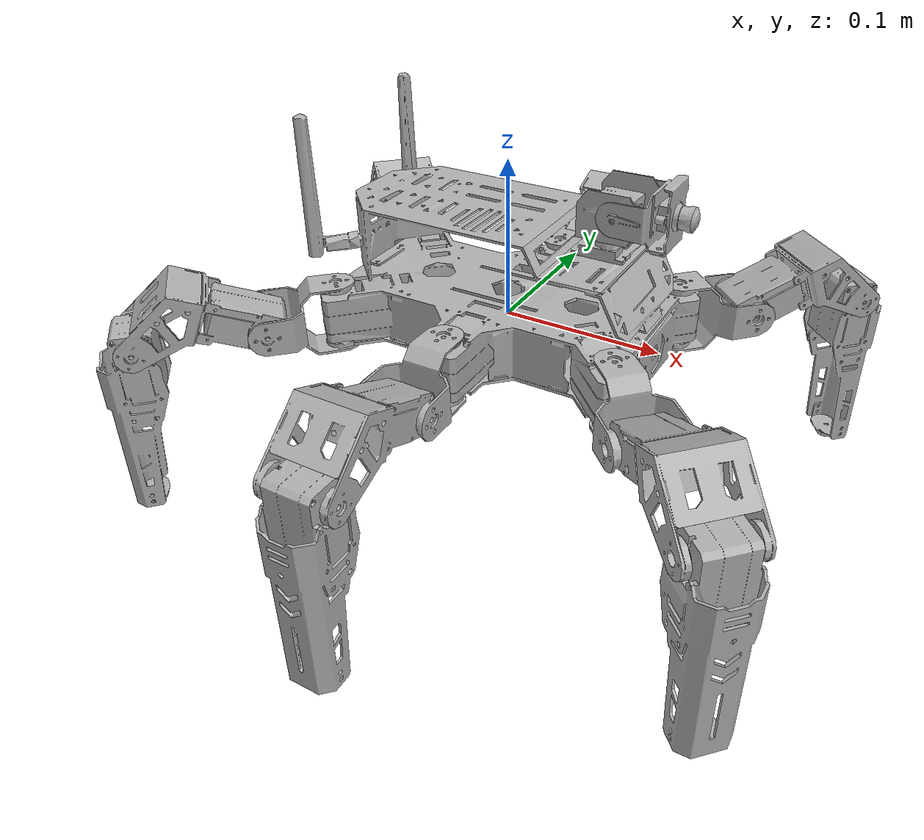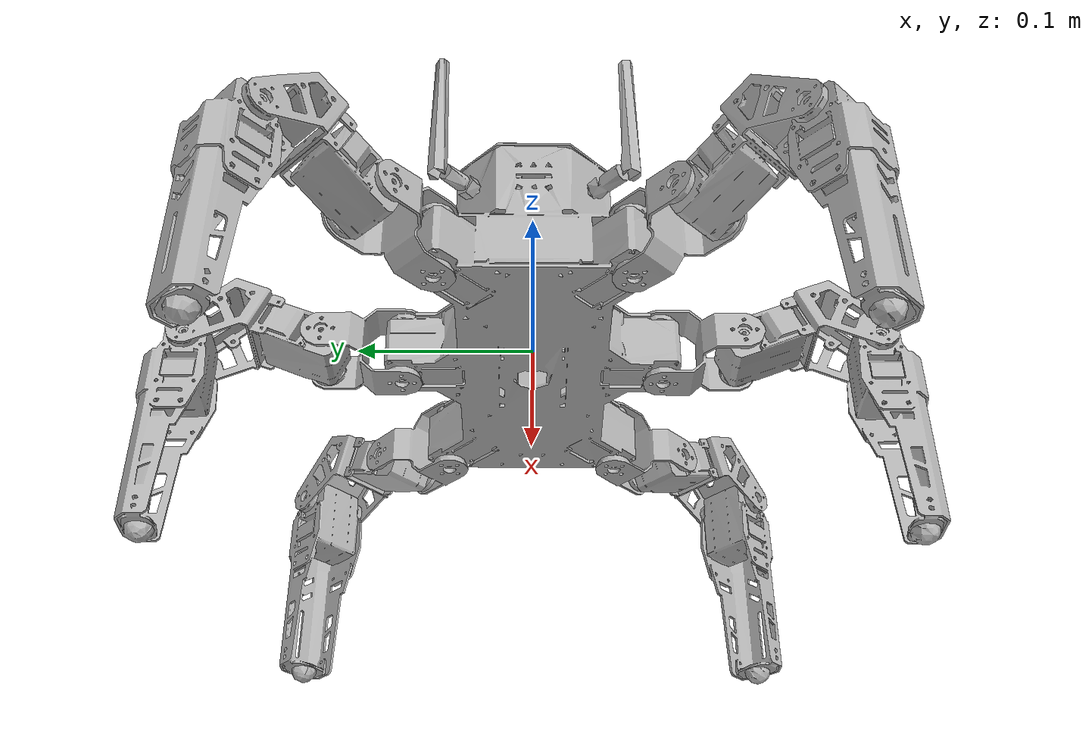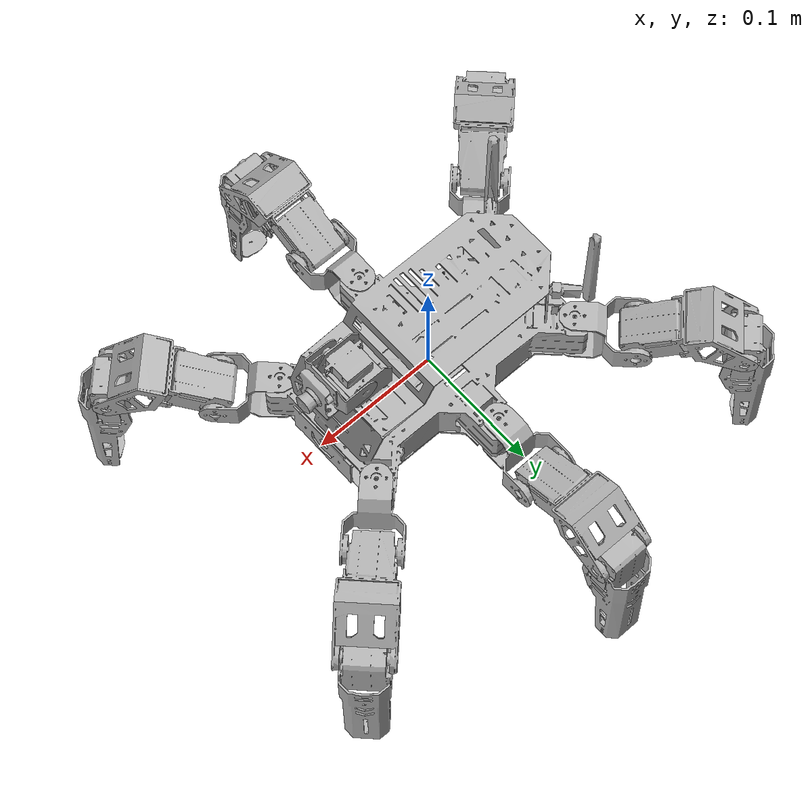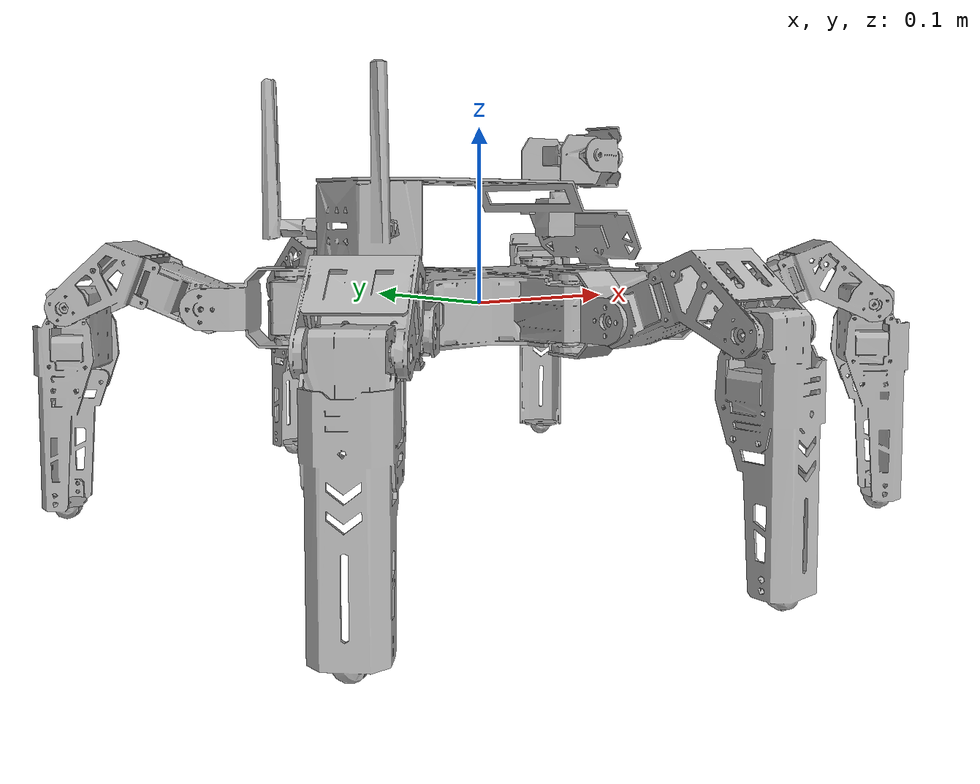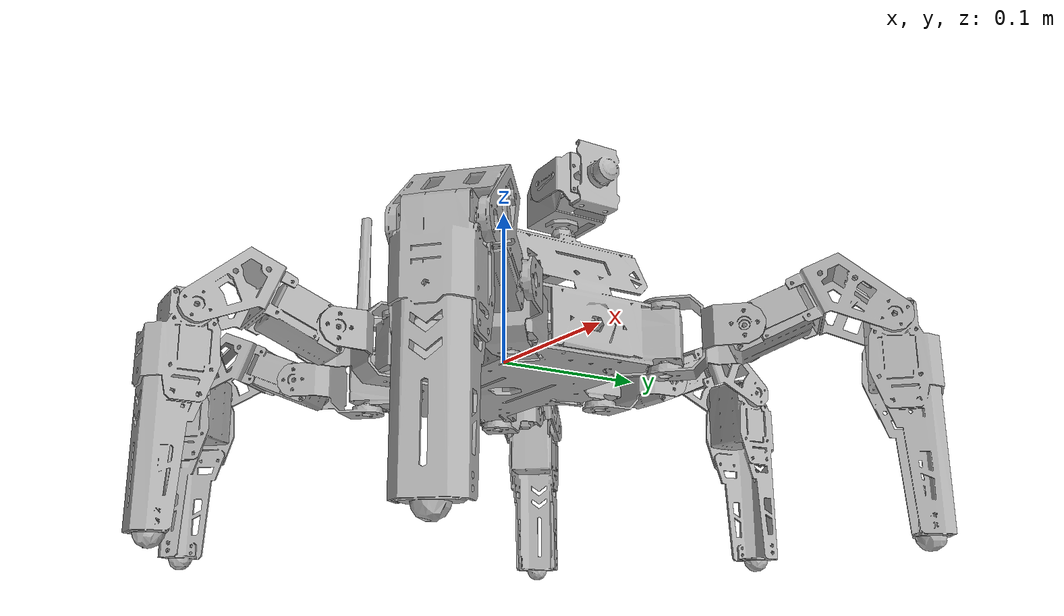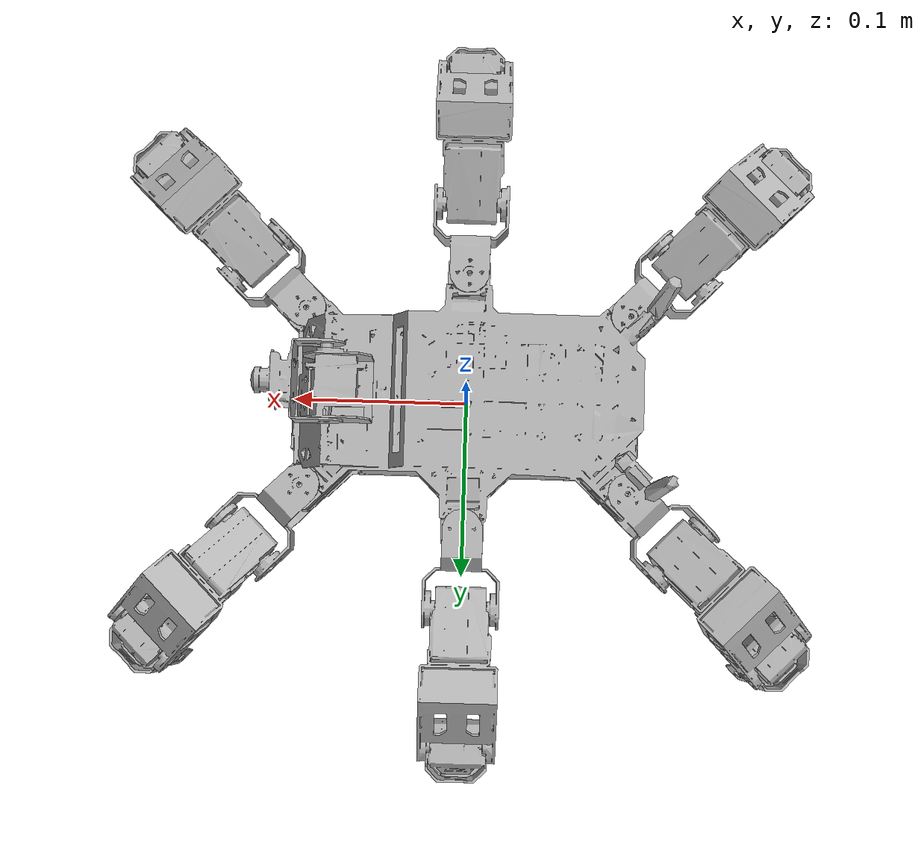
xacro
<?xml version="1.0" encoding="ASCII" ?>

<robot xmlns:xacro="http://www.ros.org/wiki/xacro">
    <!-- parameters -->
    <xacro:property name="my_pi" value="3.1415926535897931"/>
    <xacro:property name="body_length_x" value="0.3556"/>
    <xacro:property name="body_length_y" value="0.165"/>
    <xacro:property name="coxa_length" value="0.04505032"/>
    <xacro:property name="femur_length" value="0.07703"/>

    <!-- Joint properties -->
    <xacro:property name="joint_lower_limit" value="-${3.14}" />
    <xacro:property name="joint_upper_limit" value="${3.14}" />
    <xacro:property name="joint_effort" value="6.0" />
    <xacro:property name="joint_velocity" value="0.524" />

    <!-- Leg macro -->
    <xacro:macro name="leg" params="prefix side position x y angle axis">
        <!-- leg position -->
        <joint name="${prefix}leg_center_joint_${side}${position}" type="fixed">
            <origin xyz="${x} ${y} 0.0" rpy="0.0 0.0 0.0" />
            <parent link="${prefix}body_link" />
            <child link="${prefix}leg_center_${side}${position}" />
        </joint>
        <link name="${prefix}leg_center_${side}${position}">
            <inertial>
                <origin xyz="0.0 0.0 0.0" rpy="0.0 0.0 0.0" />
                <mass value="0.00001"/>
                <inertia ixx="1.0" ixy="0.0" ixz="0.0" iyy="1.0" iyz="0.0" izz="1.0" />
            </inertial>
        </link>
        <!-- coxa -->
        <joint name="${prefix}coxa_joint_${side}${position}" type="revolute">
            <origin xyz="0.0 0.0 0.0" rpy="0.0 0.0 ${angle}" />
            <parent link="${prefix}leg_center_${side}${position}" />
            <child link="${prefix}coxa_${side}${position}" />
            <axis xyz="0.0 0.0 1.0" />
            <limit lower="${joint_lower_limit}" upper="${joint_upper_limit}" effort="${joint_effort}" velocity="${joint_velocity}" />
	    <dynamics damping="0.7" />
        </joint>
        <link name="${prefix}coxa_${side}${position}">
            <visual>
                <origin xyz="0.0 0.0 0.0" rpy="0.0 0.0 0.0"/>
                <geometry>
			<mesh filename="meshes/jethexa_description/simplify/coxa.stl" scale="0.001 0.001 0.001"/>
                </geometry>
                <material name="">
                    <color rgba="0.7 0.7 0.7 1"/>
                </material>
            </visual>
            <collision>
                <origin xyz="0.0 0.0 0.0" rpy="0.0 0.0 0.0" />
                <geometry>
			<mesh filename="meshes/jethexa_description/simplify/coxa.stl" scale="0.001 0.001 0.001"/>
                </geometry>
                <material name="">
                    <color rgba="0.7 0.7 0.7 1" />
                </material>
            </collision>
            <inertial>
                <origin xyz="0.0 0.0 0.0" rpy="0.0 0.0 0.0" />
                <mass value="0.00001"/>
                <inertia ixx="1.0" ixy="0.0" ixz="0.0" iyy="1.0" iyz="0.0" izz="1.0" />
            </inertial>
        </link>
        <!-- femur -->
        <joint name="${prefix}femur_joint_${side}${position}" type="revolute">
            <origin xyz="${coxa_length} 0.0 0.0" rpy="${axis*my_pi/2} 0.0 0.0" />
            <parent link="${prefix}coxa_${side}${position}" />
            <child link="${prefix}femur_${side}${position}" />
            <axis xyz="0.0 0.0 ${axis}" />
            <limit lower="${joint_lower_limit}" upper="${joint_upper_limit}" effort="${joint_effort}" velocity="${joint_velocity}" />
	    <dynamics damping="0.7" />
        </joint>
        <link name="${prefix}femur_${side}${position}">
            <visual>
                <origin xyz="0.0 0.0 0.0" rpy="0.0 0.0 0.0"/>
                <geometry>
			<mesh filename="meshes/jethexa_description/simplify/${side}_femur.stl" scale="0.001 0.001 0.001"/>
                </geometry>
                <material name="">
                    <color rgba="0.7 0.7 0.7 1"/>
                </material>
            </visual>
            <collision>
                <origin xyz="0.0 0.0 0.0" rpy="0.0 0.0 0" />
                <geometry>
			<mesh filename="meshes/jethexa_description/simplify/${side}_femur.stl" scale="0.001 0.001 0.001"/>
                </geometry>
                <material name="">
                    <color rgba="0.7 0.7 0.7 1" />
                </material>
            </collision>
            <inertial>
                <origin xyz="0.0 0.0 0.0" rpy="0.0 0.0 1.0" />
                <mass value="0.00001"/>
                <inertia ixx="1.0" ixy="0.0" ixz="0.0" iyy="1.0" iyz="0.0" izz="1.0" />
            </inertial>
        </link>

        <!-- tibia -->
        <joint name="${prefix}tibia_joint_${side}${position}" type="revolute">
            <origin xyz="${femur_length} 0.0 0.0" rpy="0.0 0.0 ${-axis*my_pi/2}" />
            <parent link="${prefix}femur_${side}${position}" />
            <child link="${prefix}tibia_${side}${position}" />
            <axis xyz="0.0 0.0 ${axis}" />
            <limit lower="${joint_lower_limit}" upper="${joint_upper_limit}" effort="${joint_effort}" velocity="${joint_velocity}" />
	    <dynamics damping="0.7" />
        </joint>
        <link name="${prefix}tibia_${side}${position}">
            <visual>
                <origin xyz="0.0 0.0 0.0" rpy="0.0 0.0 0.0"/>
                <geometry>
			<mesh filename="meshes/jethexa_description/simplify/${side}_tibia.stl" scale="0.001 0.001 0.001"/>
                </geometry>
                <material name="">
                    <color rgba="0.7 0.7 0.7 1"/>
                </material>
            </visual>
            <collision>
                <origin xyz="0.0 0.0 0.0" rpy="0.0 0.0 0.0" />
                <geometry>
			<mesh filename="meshes/jethexa_description/simplify/${side}_tibia.stl" scale="0.001 0.001 0.001"/>
                </geometry>
                <material name="">
                    <color rgba="0.7 0.7 0.7 1" />
                </material>
            </collision>
            <inertial>
                <origin xyz="0.0 0.0 0.0" rpy="0.0 0.0 0.0" />
                <mass value="0.00001"/>
                <inertia ixx="1.0" ixy="0.0" ixz="0.0" iyy="1.0" iyz="0.0" izz="1.0" />
            </inertial>
        </link>
        <!-- END -->
        <joint name="${prefix}end_joint${side}${position}" type="fixed">
            <origin xyz="0.12 0.0 0.0" rpy="0.0 0.0 0.0" />
            <parent link="${prefix}tibia_${side}${position}" />
            <child link="${prefix}end_${side}${position}" />
            <axis xyz="0.0 0.0 0.0" />
        </joint>
        <link name="${prefix}end_${side}${position}">
        </link>
    </xacro:macro>

    <xacro:macro name="jethexa" params="prefix parent *origin">
        <joint name="${prefix}base_joint" type="fixed">
            <parent link="${parent}"/>
            <child link="${prefix}body_link" />
            <xacro:insert_block name="origin"/>
        </joint>
        <link name="${prefix}body_link">
            <visual>
                <origin xyz="0.0 0.0 0.0" rpy="0.0 0.0 0.0" />
                <geometry>
			<mesh filename="meshes/jethexa_description/simplify/body.stl" scale="0.001 0.001 0.001"/>
                </geometry>
                <material name="">
                    <color rgba="0.7 0.7 0.7 1" />
                </material>
            </visual>
            <collision>
                <origin xyz="0.0 0.0 0.0" rpy="0.0 0.0 0.0"/>
                <geometry>
			<mesh filename="meshes/jethexa_description/simplify/body.stl" scale="0.001 0.001 0.001"/>
                </geometry>
                <material name="">
                    <color rgba="0.7 0.7 0.7 1"/>
                </material>
            </collision>
            <inertial>
                <origin xyz="0.0 0.0 0.0" rpy="0.0 0.0 0.0" />
                <mass value="0.00001"/>
                <inertia ixx="1.0" ixy="0.0" ixz="0.0" iyy="1.0" iyz="0.0" izz="1.0" />
            </inertial>
        </link>
        <!-- Head Pan and Tilt properties -->
        <joint name="${prefix}head_center_joint" type="fixed">
            <parent link="${prefix}body_link"/>
            <child link="${prefix}head_center_link"/>
            <origin xyz="0.065455 0.0 0.0" rpy="0.0 0.0 0.0"/>
        </joint>
        <link name="${prefix}head_center_link">
            <inertial>
                <origin xyz="0.0 0.0 0.0" rpy="0.0 0.0 0.0" />
                <mass value="0.00001"/>
                <inertia ixx="1.0" ixy="0.0" ixz="0.0" iyy="1.0" iyz="0.0" izz="1.0" />
            </inertial>
        </link>

        <joint name="${prefix}head_pan_joint" type="revolute">
            <parent link="${prefix}head_center_link"/>
            <child link="${prefix}head_pan_link"/>
            <axis xyz="0.0 0.0 1.0" />
            <origin xyz="0.0 0.0 0.068857338" rpy="0.0 0.0 0.0"/>
            <limit lower="-3.14" upper="3.14" effort="10000" velocity="100" />
	    <dynamics damping="0.7" />
        </joint>

        <link name="${prefix}head_pan_link">
            <visual>
                <origin xyz="0.0 0.0 0.0" rpy="0.0 0.0 0.0"/>
                <geometry>
			<mesh filename="meshes/jethexa_description/simplify/head_pan.stl" scale="0.001 0.001 0.001"/>
                </geometry>
                <material name="">
                    <color rgba="0.7 0.7 0.7 1"/>
                </material>
            </visual>
            <collision>
                <origin xyz="0.0 0.0 0.0" rpy="0.0 0.0 0.0" />
                <geometry>
			<mesh filename="meshes/jethexa_description/simplify/head_pan.stl" scale="0.001 0.001 0.001"/>
                </geometry>
                <material name="">
                    <color rgba="0.7 0.7 0.7 1" />
                </material>
            </collision>
            <inertial>
                <origin xyz="0.0 0.0 0.0" rpy="0.0 0.0 0.0" />
                <mass value="0.00001"/>
                <inertia ixx="1.0" ixy="0.0" ixz="0.0" iyy="1.0" iyz="0.0" izz="1.0" />
            </inertial>
        </link>
        <joint name="${prefix}head_tilt_joint" type="revolute">
            <parent link="${prefix}head_pan_link"/>
            <child link="${prefix}head_tilt_link"/>
            <axis xyz="0.0 0.0 1.0" />
            <origin xyz="0.00922 0.0 0.017199" rpy="${my_pi/2} 0.0 0.0" />
            <limit lower="-3.14" upper="3.14" effort="10000" velocity="100" />
	    <dynamics damping="0.7" />
        </joint>
        <link name="${prefix}head_tilt_link">
            <visual>
                <origin xyz="0.0 0.0 0.0" rpy="0.0 0.0 0.0"/>
                <geometry>
			<mesh filename="meshes/jethexa_description/simplify/head_tilt.stl" scale="0.001 0.001 0.001"/>
                </geometry>
                <material name="">
                    <color rgba="0.7 0.7 0.7 1"/>
                </material>
            </visual>
            <collision>
                <origin xyz="0.0 0.0 0.0" rpy="0.0 0.0 0.0" />
                <geometry>
			<mesh filename="meshes/jethexa_description/simplify/head_tilt.stl" scale="0.001 0.001 0.001"/>
                </geometry>
                <material name="">
                    <color rgba="0.7 0.7 0.7 1" />
                </material>
            </collision>
            <inertial>
                <origin xyz="0.0 0.0 0.0" rpy="0.0 0.0 0.0" />
                <mass value="0.00001"/>
                <inertia ixx="1.0" ixy="0.0" ixz="0.0" iyy="1.0" iyz="0.0" izz="1.0" />
            </inertial>
        </link>

        <xacro:leg prefix="${prefix}" side="R" position="R" x="-0.093205" y="-0.05098" angle="-${my_pi*3/4}" axis="1" />
        <xacro:leg prefix="${prefix}" side="R" position="M" x="0.0" y="-0.073535" angle="-${my_pi/2}" axis="1" />
        <xacro:leg prefix="${prefix}" side="R" position="F" x="0.093205" y="-0.05098" angle="-${my_pi/4}" axis="1" />
        <xacro:leg prefix="${prefix}" side="L" position="R" x="-0.093205" y="0.05098" angle="${my_pi*3/4}" axis="-1" />
        <xacro:leg prefix="${prefix}" side="L" position="M" x="0.0" y="0.07353" angle="${my_pi/2}" axis="-1" />
        <xacro:leg prefix="${prefix}" side="L" position="F" x="0.093205" y="0.05098" angle="${my_pi/4}" axis="-1" />
    </xacro:macro>
    <link name="World"/>

    <!-- jethexa 매크로 호출 -->
    <xacro:jethexa prefix="" parent="World">
        <origin xyz="0 0 0" rpy="0 0 0"/>
    </xacro:jethexa>

</robot>
